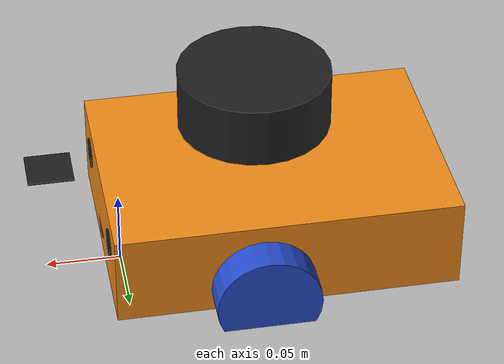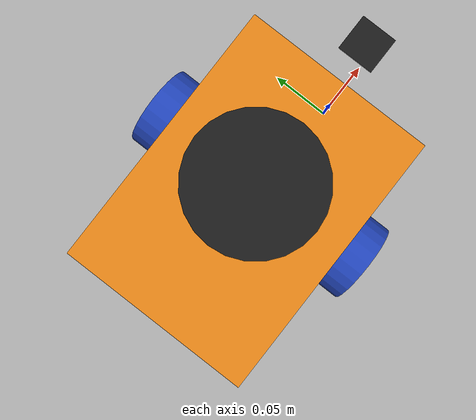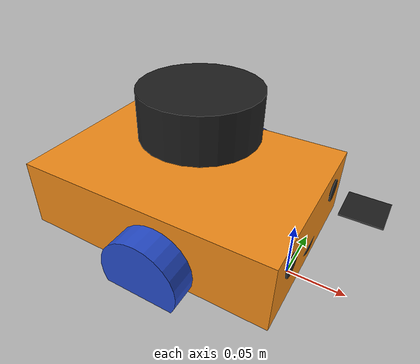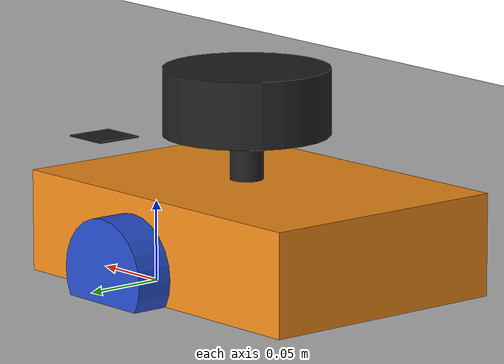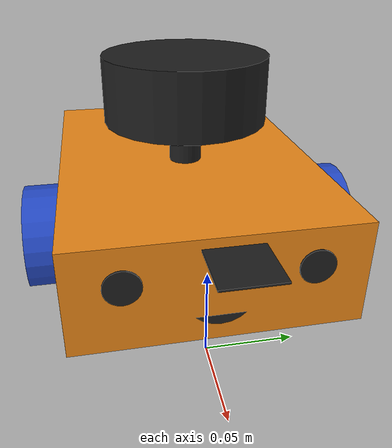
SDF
<sdf version="1.7">
 <world name="default">
  <light name="sun" type="directional">
   <pose>0 0 10 0 -0 0</pose>
   <diffuse>0.8 0.8 0.8 1</diffuse>
   <specular>0.2 0.2 0.2 1</specular>
   <attenuation>
    <range>1000</range>
    <constant>0.9</constant>
    <linear>0.01</linear>
    <quadratic>0.001</quadratic>
   </attenuation>
   <direction>-0.5 0.1 -0.9</direction>
   <spot><inner_angle>0</inner_angle><outer_angle>0</outer_angle><falloff>0</falloff></spot>
  </light>
  <model name="ground_plane">
   <static>1</static>
   <link name="link">
    <collision name="collision">
     <geometry><plane><normal>0 0 1</normal><size>100 100</size></plane></geometry>
     <surface><friction><ode><mu>100</mu><mu2>50</mu2></ode></friction></surface>
    </collision>
    <visual name="visual">
     <cast_shadows>0</cast_shadows>
     <geometry><plane><normal>0 0 1</normal><size>100 100</size></plane></geometry>
     <material>
      <script><uri>file://media/materials/scripts/gazebo.material</uri><name>Gazebo/Grey</name></script>
     </material>
    </visual>
   </link>
  </model>
  <gravity>0 0 -9.8</gravity>
  <magnetic_field>6e-06 2.3e-05 -4.2e-05</magnetic_field>
  <atmosphere type="adiabatic"/>
  <physics type="ode">
   <max_step_size>0.001</max_step_size>
   <real_time_factor>1</real_time_factor>
   <real_time_update_rate>1000</real_time_update_rate>
  </physics>
  <scene><ambient>0.4 0.4 0.4 1</ambient><background>0.7 0.7 0.7 1</background><shadows>1</shadows></scene>
  <spherical_coordinates>
   <surface_model>EARTH_WGS84</surface_model>
   <latitude_deg>0</latitude_deg>
   <longitude_deg>0</longitude_deg>
   <elevation>0</elevation>
   <heading_deg>0</heading_deg>
  </spherical_coordinates>
  <model name="my_bot">
   <link name="base_link">
    <inertial>
     <pose>-0.017049 0 0.024934 0 -0 0</pose>
     <mass>0.61</mass>
     <inertia>
      <ixx>0.00186997</ixx>
      <ixy>0</ixy>
      <ixz>-9.6743e-05</ixz>
      <iyy>0.00296715</iyy>
      <iyz>0</iyz>
      <izz>0.00335591</izz>
     </inertia>
    </inertial>
    <collision name="base_link_fixed_joint_lump__chassis_collision">
     <pose>-0.0175 0 0.0125 0 -0 0</pose>
     <geometry><box><size>0.225 0.16 0.065</size></box></geometry>
    </collision>
    <collision name="base_link_fixed_joint_lump__caster_wheel_collision_1">
     <pose>-0.085 0 -0.024 0 -0 0</pose>
     <geometry><sphere><radius>0.01</radius></sphere></geometry>
     <surface><friction><ode><mu>0.001</mu><mu2>0.001</mu2></ode></friction></surface>
    </collision>
    <collision name="base_link_fixed_joint_lump__laser_frame_collision_2">
     <pose>-0.008 0 0.092 0 -0 0</pose>
     <geometry><cylinder><length>0.04</length><radius>0.05</radius></cylinder></geometry>
    </collision>
    <visual name="base_link_fixed_joint_lump__chassis_visual">
     <pose>-0.0175 0 0.0125 0 -0 0</pose>
     <geometry><box><size>0.225 0.16 0.065</size></box></geometry>
     <material>
      <script><name>Gazebo/Orange</name><uri>file://media/materials/scripts/gazebo.material</uri></script>
     </material>
    </visual>
    <visual name="base_link_fixed_joint_lump__camera_link_visual_1">
     <pose>0.127 0 0.05 3.14159 1.57079 3.14159</pose>
     <geometry><box><size>0.001 0.03 0.03</size></box></geometry>
     <material>
      <script><name>Gazebo/Black</name><uri>file://media/materials/scripts/gazebo.material</uri></script>
     </material>
    </visual>
    <visual name="base_link_fixed_joint_lump__caster_wheel_visual_2">
     <pose>-0.085 0 -0.024 0 -0 0</pose>
     <geometry><sphere><radius>0.01</radius></sphere></geometry>
     <material>
      <script><name>Gazebo/White</name><uri>file://media/materials/scripts/gazebo.material</uri></script>
     </material>
    </visual>
    <visual name="base_link_fixed_joint_lump__face_link_visual_3">
     <pose>0.095 0.05 0.0225 3.14159 1.57079 3.14159</pose>
     <geometry><cylinder><length>0.002</length><radius>0.01</radius></cylinder></geometry>
     <material>
      <script><name>Gazebo/Black</name><uri>file://media/materials/scripts/gazebo.material</uri></script>
     </material>
    </visual>
    <visual name="base_link_fixed_joint_lump__face_link_visual_4">
     <pose>0.095 -0.05 0.0225 3.14159 1.57079 3.14159</pose>
     <geometry><cylinder><length>0.002</length><radius>0.01</radius></cylinder></geometry>
     <material>
      <script><name>Gazebo/Black</name><uri>file://media/materials/scripts/gazebo.material</uri></script>
     </material>
    </visual>
    <visual name="base_link_fixed_joint_lump__face_link_visual_5">
     <pose>0.084 0 0.0125 0 1.5 0</pose>
     <geometry><cylinder><length>0.02</length><radius>0.02</radius></cylinder></geometry>
     <material>
      <script><name>Gazebo/Black</name><uri>file://media/materials/scripts/gazebo.material</uri></script>
     </material>
    </visual>
    <visual name="base_link_fixed_joint_lump__laser_frame_visual_6">
     <pose>-0.008 0 0.092 0 -0 0</pose>
     <geometry><cylinder><length>0.04</length><radius>0.05</radius></cylinder></geometry>
     <material>
      <script><name>Gazebo/Black</name><uri>file://media/materials/scripts/gazebo.material</uri></script>
     </material>
    </visual>
    <visual name="base_link_fixed_joint_lump__laser_frame_visual_7">
     <pose>-0.008 0 0.042 0 -0 0</pose>
     <geometry><cylinder><length>0.1</length><radius>0.01</radius></cylinder></geometry>
     <material>
      <script><name>Gazebo/Black</name><uri>file://media/materials/scripts/gazebo.material</uri></script>
     </material>
    </visual>
    <sensor name="camera" type="camera">
     <visualize>1</visualize>
     <update_rate>10</update_rate>
     <camera>
      <horizontal_fov>1.089</horizontal_fov>
      <image><format>R8G8B8</format><width>640</width><height>480</height></image>
      <clip><near>0.05</near><far>8</far></clip>
     </camera>
     <plugin name="camera_controller" filename="libgazebo_ros_camera.so">
      <frame_name>camera_link_optical</frame_name>
     </plugin>
     <pose>0.127 0 0.05 3.14159 1.57079 3.14159</pose>
    </sensor>
    <sensor name="laser" type="ray">
     <visualize>0</visualize>
     <update_rate>10</update_rate>
     <ray>
      <scan>
       <horizontal>
        <samples>360</samples>
        <min_angle>-3.14</min_angle>
        <max_angle>3.14</max_angle>
        <resolution>1</resolution>
       </horizontal>
       <vertical><samples>1</samples><min_angle>0</min_angle><max_angle>0</max_angle></vertical>
      </scan>
      <range><min>0.3</min><max>12</max></range>
     </ray>
     <plugin name="laser_controller" filename="libgazebo_ros_ray_sensor.so">
      <ros><argument>~/out:=scan</argument></ros>
      <output_type>sensor_msgs/LaserScan</output_type>
      <frame_name>laser_frame</frame_name>
     </plugin>
     <pose>-0.008 0 0.092 0 -0 0</pose>
    </sensor>
   </link>
   <joint name="left_wheel_joint" type="revolute">
    <pose relative_to="base_link">0 0.09 0 -1.5708 0 0</pose>
    <parent>base_link</parent>
    <child>left_wheel</child>
    <axis>
     <xyz>0 0 1</xyz>
     <limit><lower>-1e+16</lower><upper>1e+16</upper></limit>
     <dynamics><spring_reference>0</spring_reference><spring_stiffness>0</spring_stiffness></dynamics>
    </axis>
   </joint>
   <link name="left_wheel">
    <pose relative_to="left_wheel_joint">0 0 0 0 -0 0</pose>
    <inertial>
     <mass>0.05</mass>
     <inertia>
      <ixx>1.72667e-05</ixx>
      <ixy>0</ixy>
      <ixz>0</ixz>
      <iyy>1.72667e-05</iyy>
      <iyz>0</iyz>
      <izz>2.89e-05</izz>
     </inertia>
    </inertial>
    <collision name="left_wheel_collision">
     <geometry><sphere><radius>0.034</radius></sphere></geometry>
    </collision>
    <visual name="left_wheel_visual">
     <geometry><cylinder><length>0.026</length><radius>0.034</radius></cylinder></geometry>
     <material>
      <script><name>Gazebo/Blue</name><uri>file://media/materials/scripts/gazebo.material</uri></script>
     </material>
    </visual>
   </link>
   <joint name="right_wheel_joint" type="revolute">
    <pose relative_to="base_link">0 -0.09 0 1.5708 -0 0</pose>
    <parent>base_link</parent>
    <child>right_wheel</child>
    <axis>
     <xyz>0 0 -1</xyz>
     <limit><lower>-1e+16</lower><upper>1e+16</upper></limit>
     <dynamics><spring_reference>0</spring_reference><spring_stiffness>0</spring_stiffness></dynamics>
    </axis>
   </joint>
   <link name="right_wheel">
    <pose relative_to="right_wheel_joint">0 0 0 0 -0 0</pose>
    <inertial>
     <mass>0.05</mass>
     <inertia>
      <ixx>1.72667e-05</ixx>
      <ixy>0</ixy>
      <ixz>0</ixz>
      <iyy>1.72667e-05</iyy>
      <iyz>0</iyz>
      <izz>2.89e-05</izz>
     </inertia>
    </inertial>
    <collision name="right_wheel_collision">
     <geometry><sphere><radius>0.034</radius></sphere></geometry>
    </collision>
    <visual name="right_wheel_visual">
     <geometry><cylinder><length>0.026</length><radius>0.034</radius></cylinder></geometry>
     <material>
      <script><name>Gazebo/Blue</name><uri>file://media/materials/scripts/gazebo.material</uri></script>
     </material>
    </visual>
   </link>
   <plugin name="gazebo_ros2_control" filename="libgazebo_ros2_control.so">
    <parameters>./install/simulador_gazebo/share/simulador_gazebo/config/my_controllers.yaml</parameters>
    <parameters>./install/simulador_gazebo/share/simulador_gazebo/config/gaz_ros2_ctl_use_sim.yaml</parameters>
   </plugin>
   <frame name="base_footprint_joint" attached_to="base_link"/>
   <frame name="base_footprint" attached_to="base_footprint_joint"/>
   <frame name="camera_optical_joint" attached_to="camera_link"><pose>0 0 0 -1.5708 -0 -1.5708</pose></frame>
   <frame name="camera_link_optical" attached_to="camera_optical_joint"/>
   <frame name="camera_joint" attached_to="chassis"><pose>0.257 0 0.07 0 1.57 0</pose></frame>
   <frame name="camera_link" attached_to="camera_joint"/>
   <frame name="caster_wheel_joint" attached_to="chassis"><pose>0.045 0 -0.004 0 -0 0</pose></frame>
   <frame name="caster_wheel" attached_to="caster_wheel_joint"/>
   <frame name="face_joint" attached_to="chassis"><pose>0.225 0 0.0325 0 -0 0</pose></frame>
   <frame name="face_link" attached_to="face_joint"/>
   <frame name="laser_joint" attached_to="chassis"><pose>0.122 0 0.112 0 -0 0</pose></frame>
   <frame name="laser_frame" attached_to="laser_joint"/>
   <frame name="chassis_joint" attached_to="base_link"><pose>-0.13 0 -0.02 0 -0 0</pose></frame>
   <frame name="chassis" attached_to="chassis_joint"/>
   <pose>-0.082677 0.00448 0.033996 3.9e-05 4.8e-05 0.0067</pose>
  </model>
  <model name="Marker0">
   <static>1</static>
   <link name="link">
    <visual name="visual">
     <geometry><mesh><uri>model://marker0/meshes/Marker0.dae</uri><scale>1 10 7</scale></mesh></geometry>
    </visual>
   </link>
   <pose>0.644205 2.94917 0.013027 -1.44887 -1.56959 2.97791</pose>
  </model>
  <light name="user_point_light_0" type="point">
   <pose>-1.87618 -0.638229 1 0 -0 0</pose>
   <diffuse>0.5 0.5 0.5 1</diffuse>
   <specular>0.1 0.1 0.1 1</specular>
   <attenuation>
    <range>20</range>
    <constant>0.5</constant>
    <linear>0.01</linear>
    <quadratic>0.001</quadratic>
   </attenuation>
   <cast_shadows>0</cast_shadows>
   <direction>0 0 -1</direction>
   <spot><inner_angle>0</inner_angle><outer_angle>0</outer_angle><falloff>0</falloff></spot>
  </light>
  <light name="user_point_light_1" type="point">
   <pose>-1.17003 2.05884 1 0 -0 0</pose>
   <diffuse>0.5 0.5 0.5 1</diffuse>
   <specular>0.1 0.1 0.1 1</specular>
   <attenuation>
    <range>20</range>
    <constant>0.5</constant>
    <linear>0.01</linear>
    <quadratic>0.001</quadratic>
   </attenuation>
   <cast_shadows>0</cast_shadows>
   <direction>0 0 -1</direction>
   <spot><inner_angle>0</inner_angle><outer_angle>0</outer_angle><falloff>0</falloff></spot>
  </light>
  <light name="user_point_light_2" type="point">
   <pose>-3.43259 -0.227384 1 0 -0 0</pose>
   <diffuse>0.5 0.5 0.5 1</diffuse>
   <specular>0.1 0.1 0.1 1</specular>
   <attenuation>
    <range>20</range>
    <constant>0.5</constant>
    <linear>0.01</linear>
    <quadratic>0.001</quadratic>
   </attenuation>
   <cast_shadows>0</cast_shadows>
   <direction>0 0 -1</direction>
   <spot><inner_angle>0</inner_angle><outer_angle>0</outer_angle><falloff>0</falloff></spot>
  </light>
  <light name="user_point_light_3" type="point">
   <pose>-2.40076 2.16581 1 0 -0 0</pose>
   <diffuse>0.5 0.5 0.5 1</diffuse>
   <specular>0.1 0.1 0.1 1</specular>
   <attenuation>
    <range>20</range>
    <constant>0.5</constant>
    <linear>0.01</linear>
    <quadratic>0.001</quadratic>
   </attenuation>
   <cast_shadows>0</cast_shadows>
   <direction>0 0 -1</direction>
   <spot><inner_angle>0</inner_angle><outer_angle>0</outer_angle><falloff>0</falloff></spot>
  </light>
  <light name="user_point_light_4" type="point">
   <pose>-0.293877 0.144409 1 0 -0 0</pose>
   <diffuse>0.5 0.5 0.5 1</diffuse>
   <specular>0.1 0.1 0.1 1</specular>
   <attenuation>
    <range>20</range>
    <constant>0.5</constant>
    <linear>0.01</linear>
    <quadratic>0.001</quadratic>
   </attenuation>
   <cast_shadows>0</cast_shadows>
   <direction>0 0 -1</direction>
   <spot><inner_angle>0</inner_angle><outer_angle>0</outer_angle><falloff>0</falloff></spot>
  </light>
  <light name="user_point_light_5" type="point">
   <pose>-1.48801 -1.91267 1 0 -0 0</pose>
   <diffuse>0.5 0.5 0.5 1</diffuse>
   <specular>0.1 0.1 0.1 1</specular>
   <attenuation>
    <range>20</range>
    <constant>0.5</constant>
    <linear>0.01</linear>
    <quadratic>0.001</quadratic>
   </attenuation>
   <cast_shadows>0</cast_shadows>
   <direction>0 0 -1</direction>
   <spot><inner_angle>0</inner_angle><outer_angle>0</outer_angle><falloff>0</falloff></spot>
  </light>
  <light name="user_point_light_6" type="point">
   <pose>-1.06218 0.397296 1 0 -0 0</pose>
   <diffuse>0.5 0.5 0.5 1</diffuse>
   <specular>0.1 0.1 0.1 1</specular>
   <attenuation>
    <range>20</range>
    <constant>0.5</constant>
    <linear>0.01</linear>
    <quadratic>0.001</quadratic>
   </attenuation>
   <cast_shadows>0</cast_shadows>
   <direction>0 0 -1</direction>
   <spot><inner_angle>0</inner_angle><outer_angle>0</outer_angle><falloff>0</falloff></spot>
  </light>
 </world>
</sdf>
